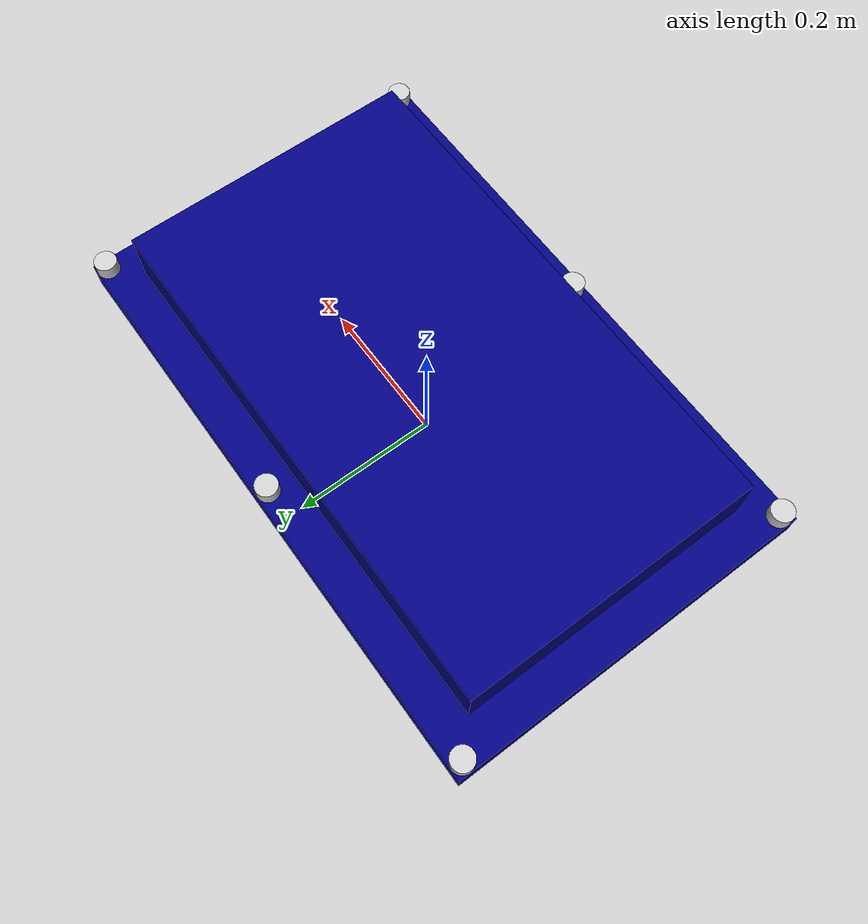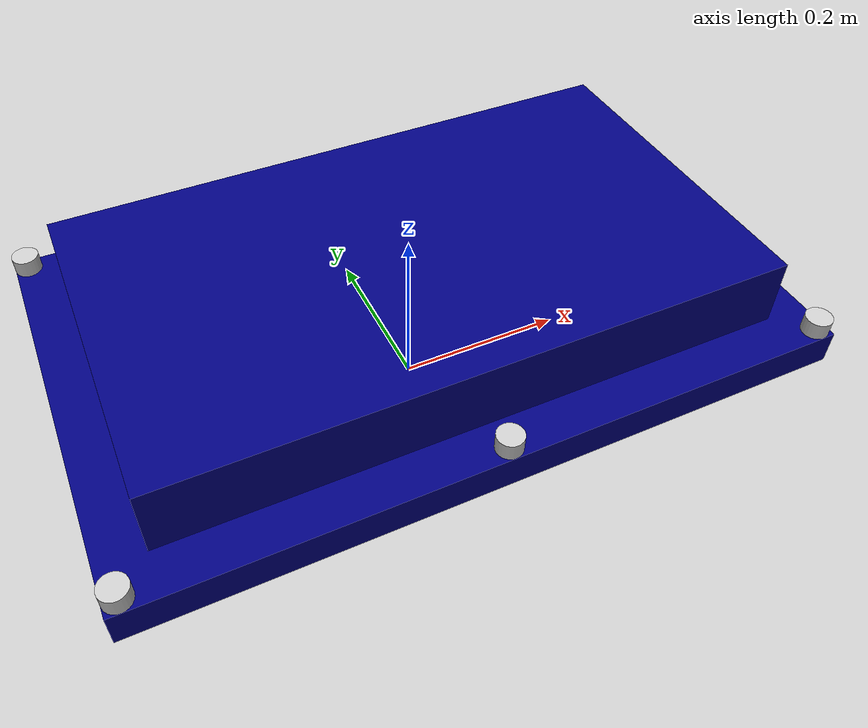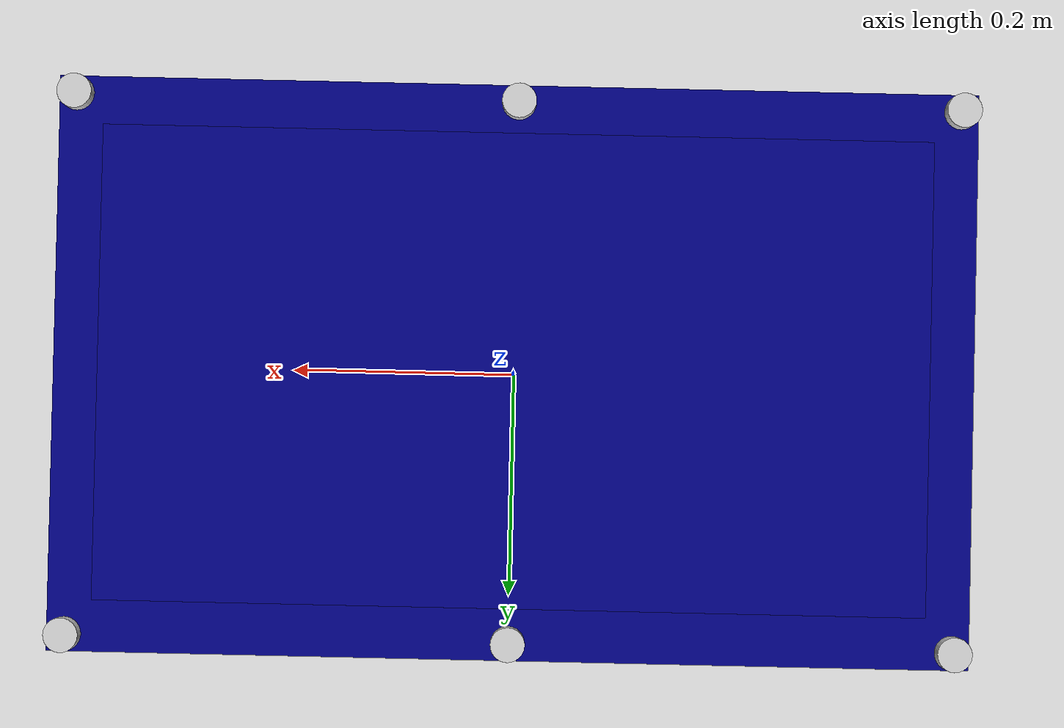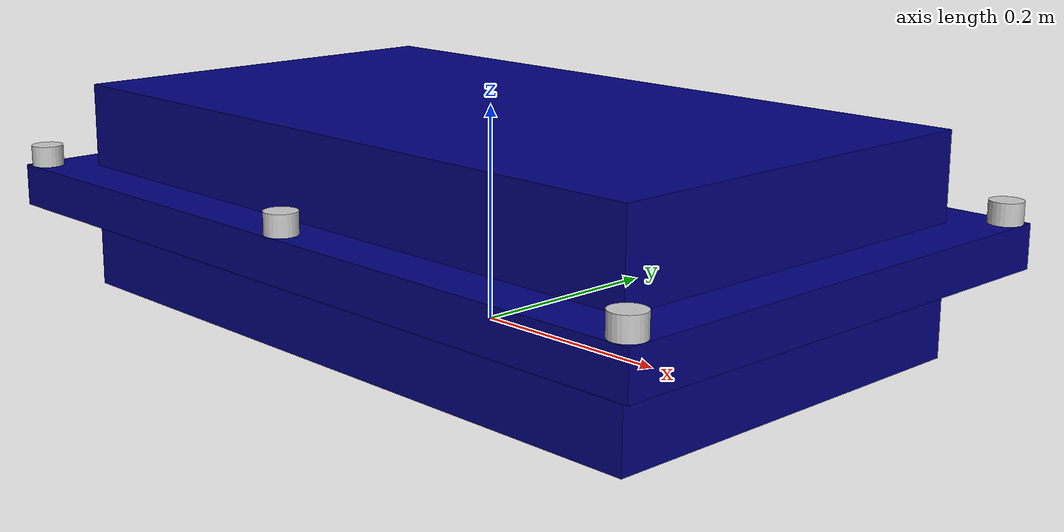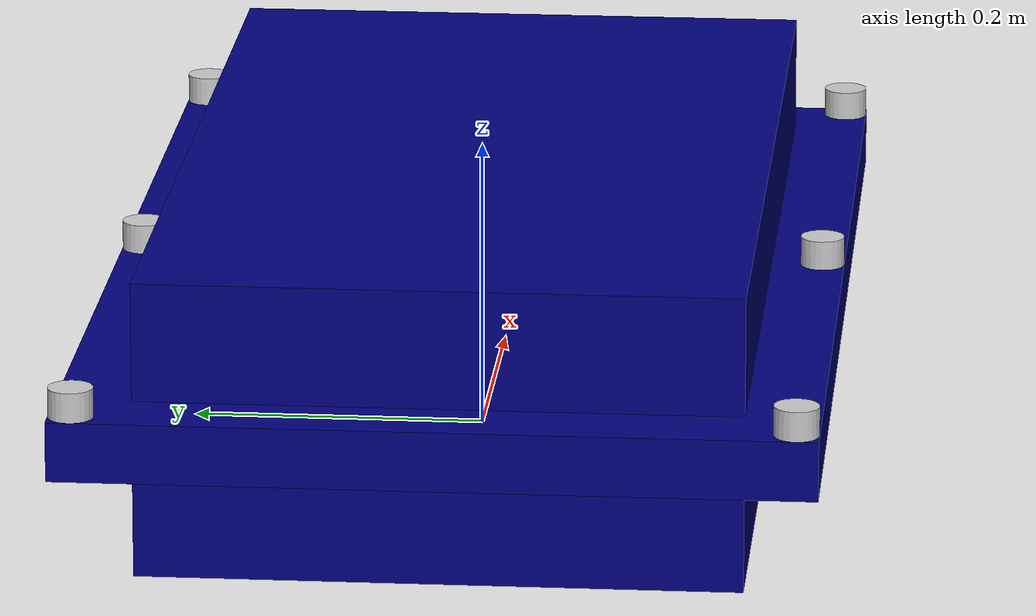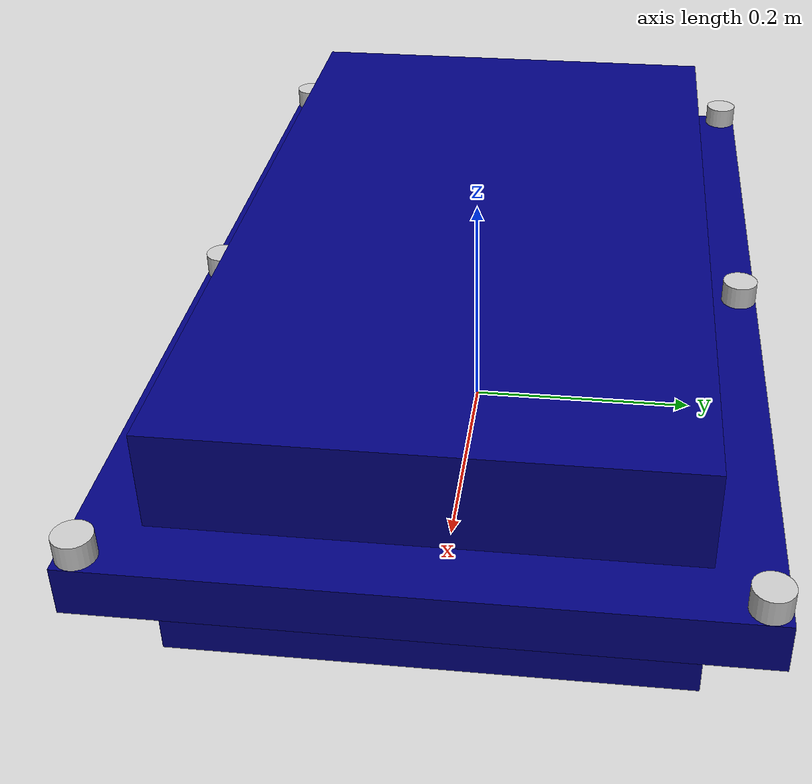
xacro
<?xml version="1.0"?>
<robot xmlns:xacro="http://wiki.ros.org/xacro" name="battery">

  <!-- ================= 1. 参数定义 ================= -->
  <xacro:property name="main_h" value="0.2"/>      <!-- 主体高度 -->
  <xacro:property name="flange_h" value="0.04"/>   <!-- 法兰厚度 -->
  <xacro:property name="flange_w" value="0.8"/>    <!-- 法兰长度（缩小） -->
  <xacro:property name="flange_d" value="0.5"/>    <!-- 法兰宽度（缩小） -->

  <xacro:property name="bolt_radius" value="0.015"/> <!-- 半径(直径0.04) -->
  <xacro:property name="bolt_length" value="0.06"/> <!-- 总高 -->
  <xacro:property name="bolt_z" value="0.11"/>      <!-- 中心Z轴高度 -->
  <!-- 【新增参数】螺栓向内缩进的距离。数字越大，离中心越近 -->
  <xacro:property name="inward_offset" value="0.0"/>

  <!-- 【修复语法】所有数学运算必须写在 ${ } 里面 -->
  <xacro:property name="bolt_x_off" value="${flange_w/2 - bolt_radius - inward_offset}"/>
  <xacro:property name="bolt_y_off" value="${flange_d/2 - bolt_radius - inward_offset}"/>

  <!-- 材质定义 -->
  <material name="dark_gray"><color rgba="0.0 0.0 0.5 1.0"/></material>
  <material name="flange_orange"><color rgba="1.0 0.5 0.0 1.0"/></material>
  <material name="bolt_silver"><color rgba="0.8 0.8 0.8 1.0"/></material>

  <!-- ================= 2. 紧固件宏定义 ================= -->
  <!-- 在 link 外部定义宏，方便多次调用 -->
  <xacro:macro name="bolt_v" params="x y name_suffix">
    <visual name="bolt_visual_${name_suffix}">
      <origin xyz="${x} ${y} ${bolt_z}" rpy="0 0 0"/>
      <geometry><cylinder radius="${bolt_radius}" length="${bolt_length}"/></geometry>
      <material name="bolt_silver"/>
    </visual>
    <collision name="bolt_collision_${name_suffix}">
      <origin xyz="${x} ${y} ${bolt_z}" rpy="0 0 0"/>
      <geometry><cylinder radius="${bolt_radius}" length="${bolt_length}"/></geometry>
    </collision>
  </xacro:macro>

  <!-- ================= 3. 实体结构 ================= -->

  <!-- A. 电池主体 -->
  <link name="battery_link">
    <inertial>
      <origin xyz="0 0 ${main_h/2}" rpy="0 0 0"/>
      <mass value="20.0"/>
      <inertia ixx="1.0" ixy="0" ixz="0" iyy="1.0" iyz="0" izz="1.0"/>
    </inertial>
    <visual>
      <origin xyz="0 0 ${main_h/2}" rpy="0 0 0"/>
      <geometry><box size="0.7 0.4 ${main_h}"/></geometry>
      <material name="dark_gray"/>
    </visual>
    <collision>
      <origin xyz="0 0 ${main_h/2}" rpy="0 0 0"/>
      <geometry><box size="0.7 0.4 ${main_h}"/></geometry>
    </collision>
  </link>

  <!-- B. 法兰凸起 (独立Link确保颜色) -->
  <link name="flange_link">
    <inertial>
      <origin xyz="0 0 ${main_h/2}" rpy="0 0 0"/>
      <mass value="2.0"/>
      <inertia ixx="0.1" ixy="0" ixz="0" iyy="0.1" iyz="0" izz="0.1"/>
    </inertial>
    <visual>
      <origin xyz="0 0 ${main_h/2}" rpy="0 0 0"/>
      <geometry><box size="${flange_w} ${flange_d} ${flange_h}"/></geometry>
      <material name="dark_gray"/>
    </visual>
    <collision>
      <origin xyz="0 0 ${main_h/2}" rpy="0 0 0"/>
      <geometry><box size="${flange_w} ${flange_d} ${flange_h}"/></geometry>
    </collision>
  </link>

  <joint name="base_to_flange" type="fixed">
    <parent link="battery_link"/>
    <child link="flange_link"/>
    <origin xyz="0 0 0" rpy="0 0 0"/>
  </joint>

  <!-- C. 紧固件集合 (减少数量以匹配缩小的电池包) -->
  <link name="bolts_link">
    <inertial>
      <origin xyz="0 0 ${bolt_z}" rpy="0 0 0"/>
      <mass value="0.5"/>
      <inertia ixx="0.01" ixy="0" ixz="0" iyy="0.01" iyz="0" izz="0.01"/>
    </inertial>
    <!-- 使用参数化位置调用宏 -->
    <!-- 四个角 -->
    <xacro:bolt_v x="${bolt_x_off}"  y="${bolt_y_off}" name_suffix="corner_1"/>
    <xacro:bolt_v x="${bolt_x_off}"  y="-${bolt_y_off}" name_suffix="corner_2"/>
    <xacro:bolt_v x="-${bolt_x_off}" y="${bolt_y_off}" name_suffix="corner_3"/>
    <xacro:bolt_v x="-${bolt_x_off}" y="-${bolt_y_off}" name_suffix="corner_4"/>
    <!-- 长边中间各一个 -->
    <xacro:bolt_v x="0" y="${bolt_y_off}" name_suffix="mid_top"/>
    <xacro:bolt_v x="0" y="-${bolt_y_off}" name_suffix="mid_bottom"/>
  </link>

  <joint name="base_to_bolts" type="fixed">
    <parent link="battery_link"/>
    <child link="bolts_link"/>
    <origin xyz="0 0 0" rpy="0 0 0"/>
  </joint>

</robot>
